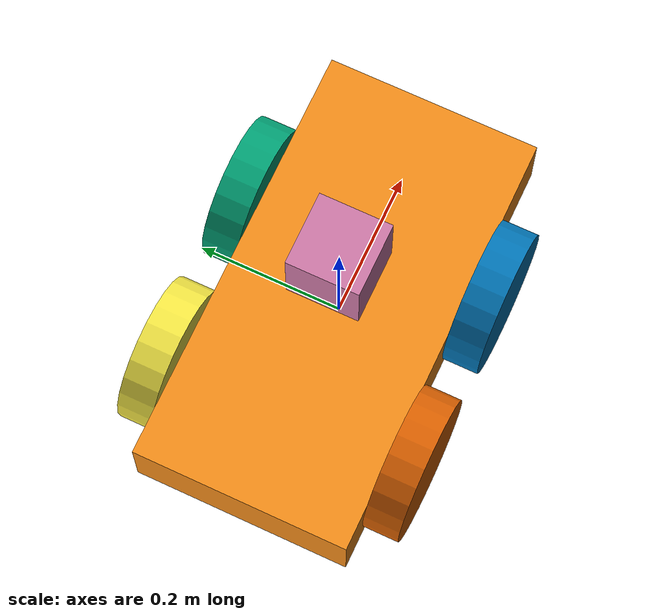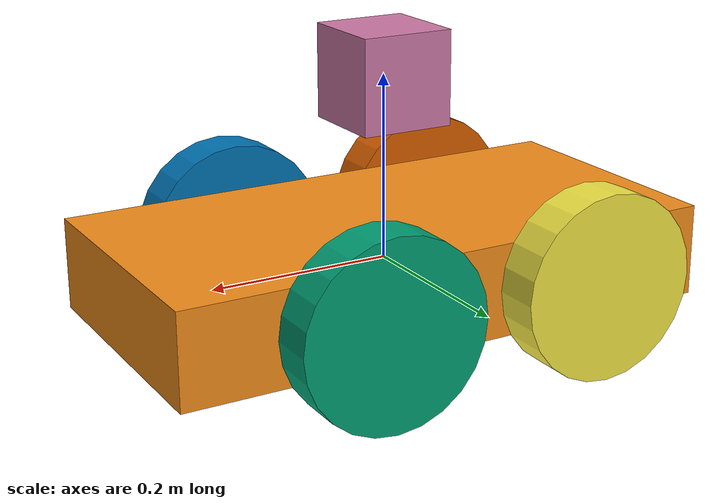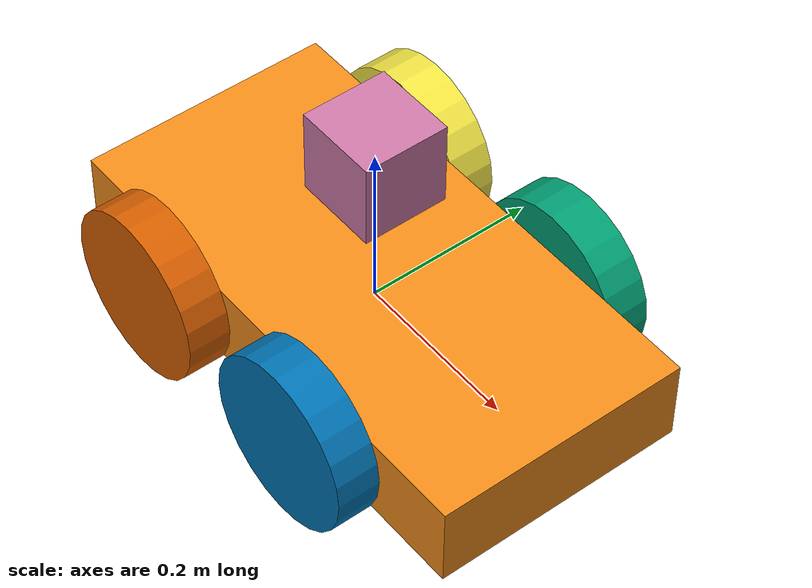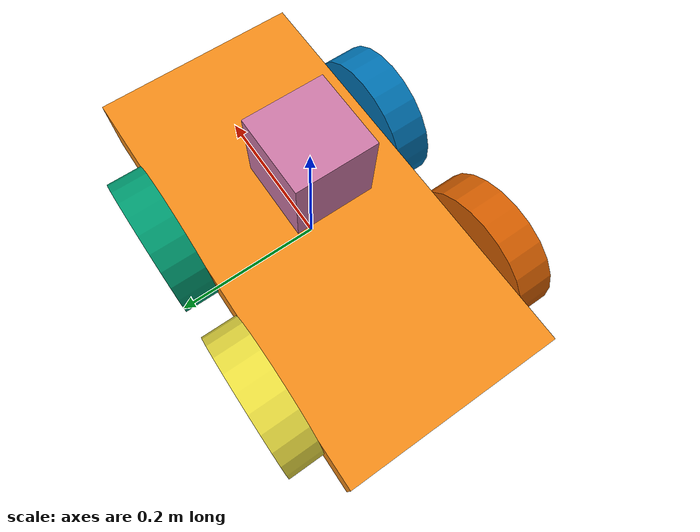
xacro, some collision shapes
<?xml version='1.0'?>

<robot name="my_robot" xmlns:xacro="http://www.ros.org/wiki/xacro">
<xacro:include filename="$(find mybot_description)/urdf/mybot.gazebo"/>

<!-- +++++++++   base_link   ++++++++++ -->
<link name='robot_footprint'>
</link>/
<!-- +++++++++   chassis   ++++++++++  /-->
<link name='chassis'>

  <inertial>
    <mass value="10.0"/>
    <origin xyz="0 0 0" rpy="0 0 0"/>
    <inertia ixx="0.05" ixy="0" ixz="0" iyy="0.05"
    iyz="0" izz="0.05"/>
  </inertial>

  <visual name='chassis_visual'>
    <origin xyz ="0 0 0" rpy="0 0 0"/>
    <geometry>
     <box size =".6 .3 .1"/>
    </geometry>
  </visual>

  <collision name ='chassis_collision'>
    <geometry>
     <box size =".6 .3 .1"/>
    </geometry>
  </collision>

  <visual name='caster_visual'>
    <origin xyz="-0.2 0 -0.05" rpy="0 0 0"/>
    <geometry>
     <sphere radius ="0.05"/>
    </geometry>
  </visual>

  <collision name ='caster_collision'>

    <origin xyz="-0.2 0 -0.05" rpy="0 0 0"/>

    <geometry>
     <sphere radius ="0.05"/>
    </geometry>

    <surface>
      <friction>
         <ode>
           <mu>0</mu>
           <mu2>0</mu2>
           <slip1>1</slip1>
           <slip2>1</slip2>
         </ode>
      </friction>
    </surface>

  </collision>
</link>

<!-- +++++++++  chassis joint  ++++++++++ -->

<joint type ="fixed" name="joint_chassis">
 <child link="chassis"/>
 <parent link="robot_footprint"/>
</joint>/

<!-- +++++++++++++++++++++++   left wheel +++++++++++++++++++++++++++++++++  /-->
<!-- +++++++++  forward left wheel link  ++++++++++  /-->
<link name='forwrad_left_wheel'>
  <inertial>
    <mass value="5.0"/>
    <origin xyz="0 0 0" rpy="0 1.5707 1.5707"/>
    <inertia ixx="0.05" ixy="0" ixz="0" iyy="0.05"
    iyz="0" izz="0.05"/>
  </inertial>

  <visual name='F_left_wheel_visual'>
    <origin xyz ="0 0 0" rpy="0 1.5707 1.5707"/>
    <geometry>
     <cylinder radius ="0.1" length="0.05"/>
    </geometry>
  </visual>

  <collision name ='FLwheel_collision'>
    <origin xyz ="0 0 0" rpy="0 1.5707 1.5707"/>
    <geometry>
     <cylinder radius ="0.1" length="0.05"/>
    </geometry>
  </collision>

</link>

<!-- +++++++++  forward left wheel joint  ++++++++++  /-->

<joint type ="continuous" name="F_left_wheel_hinge">
 <origin xyz="0.1 0.175 0" rpy="0 0 0"/>
 <child link="forwrad_left_wheel"/>
 <parent link="chassis"/>
 <axis xyz="0 1 0" rpy="0 0 0"/>
 <limit effort="100" velocity="100"/>
 <joint_properties damping="0.0" friction="0.0"/>
</joint>

<!-- +++++++++  back left wheel link  ++++++++++  -->
<link name='backwrad_left_wheel'>
  <inertial>
    <mass value="5.0"/>
    <origin xyz="0 0 0" rpy="0 1.5707 1.5707"/>
    <inertia ixx="0.05" ixy="0" ixz="0" iyy="0.05"
    iyz="0" izz="0.05"/>
  </inertial>

  <visual name='B_left_wheel_visual'>
    <origin xyz ="0 0 0" rpy="0 1.5707 1.5707"/>
    <geometry>
     <cylinder radius ="0.1" length="0.05"/>
    </geometry>
  </visual>

  <collision name ='B_Lwheel_collision'>
    <origin xyz ="0 0 0" rpy="0 1.5707 1.5707"/>
    <geometry>
     <cylinder radius ="0.1" length="0.05"/>
    </geometry>
  </collision>

</link> /

<!-- +++++++++  back left wheel joint  ++++++++++  -->

<joint type ="continuous" name="B_left_wheel_hinge">
 <origin xyz="-0.15 0.175 0" rpy="0 0 0"/>
 <child link="backwrad_left_wheel"/>
 <parent link="chassis"/>
 <axis xyz="0 1 0" rpy="0 0 0"/>
 <limit effort="100" velocity="100"/>
 <joint_properties damping="0.0" friction="0.0"/>
</joint> /

<!-- +++++++++++++++++++++++   right wheel +++++++++++++++++++++++++++++++++  /-->
<!-- +++++++++ forward right wheel link  ++++++++++  /-->
<link name='forward_right_wheel'>
  <inertial>
    <mass value="5.0"/>
    <origin xyz="0 0 0" rpy="0 1.5707 1.5707"/>
    <inertia ixx="0.05" ixy="0" ixz="0" iyy="0.05"
    iyz="0" izz="0.05"/>
  </inertial>

  <visual name='F_right_wheel_visual'>
    <origin xyz ="0 0 0" rpy="0 1.5707 1.5707"/>
    <geometry>
     <cylinder radius ="0.1" length="0.05"/>
    </geometry>
  </visual>

  <collision name ='F_Rwheel_collision'>
    <origin xyz ="0 0 0" rpy="0 1.5707 1.5707"/>
    <geometry>
     <cylinder radius ="0.1" length="0.05"/>
    </geometry>
  </collision>

</link>

<!-- +++++++++  forawrd right wheel joint  ++++++++++  /-->

<joint type ="continuous" name="f_right_wheel_hinge">
 <origin xyz="0.1 -0.175 0" rpy="0 0 0"/>
 <child link="forward_right_wheel"/>
 <parent link="chassis"/>
 <axis xyz="0 1 0" rpy="0 0 0"/>
 <limit effort="100" velocity="100"/>
 <joint_properties damping="0.0" friction="0.0"/>
</joint>

<!-- +++++++++ back right wheel link  ++++++++++  -->
<link name='backward_right_wheel'>
  <inertial>
    <mass value="5.0"/>
    <origin xyz="0 0 0" rpy="0 1.5707 1.5707"/>
    <inertia ixx="0.05" ixy="0" ixz="0" iyy="0.05"
    iyz="0" izz="0.05"/>
  </inertial>

  <visual name='B_right_wheel_visual'>
    <origin xyz ="0 0 0" rpy="0 1.5707 1.5707"/>
    <geometry>
     <cylinder radius ="0.1" length="0.05"/>
    </geometry>
  </visual>

  <collision name ='B_Rwheel_collision'>
    <origin xyz ="0 0 0" rpy="0 1.5707 1.5707"/>
    <geometry>
     <cylinder radius ="0.1" length="0.05"/>
    </geometry>
  </collision>

</link> /

<!-- +++++++++  backawrd right wheel joint  ++++++++++  -->

<joint type ="continuous" name="B_right_wheel_hinge">
 <origin xyz="-0.15 -0.175 0" rpy="0 0 0"/>
 <child link="backward_right_wheel"/>
 <parent link="chassis"/>
 <axis xyz="0 1 0" rpy="0 0 0"/>
 <limit effort="100" velocity="100"/>
 <joint_properties damping="0.0" friction="0.0"/>
</joint> /

  <!-- +++++++++++++ Lidar link +++++++++++++++++ /-->
  <link name="lidar_link">
    <collision>
      <origin xyz="0 0 0" rpy="0 0 0"/>
      <geometry>
    <box size="0.1 0.1 0.1"/>
      </geometry>
    </collision>

    <visual>
      <origin xyz="0 0 0" rpy="0 0 0"/>
      <geometry>
        <mesh filename="package://mybot_description/meshes/lidar.dae"/>
      </geometry>
    </visual>

    <inertial>
      <mass value="1e-5" />
      <origin xyz="0 0 0" rpy="0 0 0"/>
      <inertia ixx="1e-6" ixy="0" ixz="0" iyy="1e-6" iyz="0" izz="1e-6" />
    </inertial>
  </link>

  <!-- +++++++++ lidar joint ++++++++++  /-->
   <joint name="lidar_joint" type="fixed">
    <axis xyz="0 1 0" />
    <origin xyz="0 0 0.2" rpy="0 0 0"/>
    <parent link="chassis"/>
    <child link="lidar_link"/>
  </joint>

</robot>
